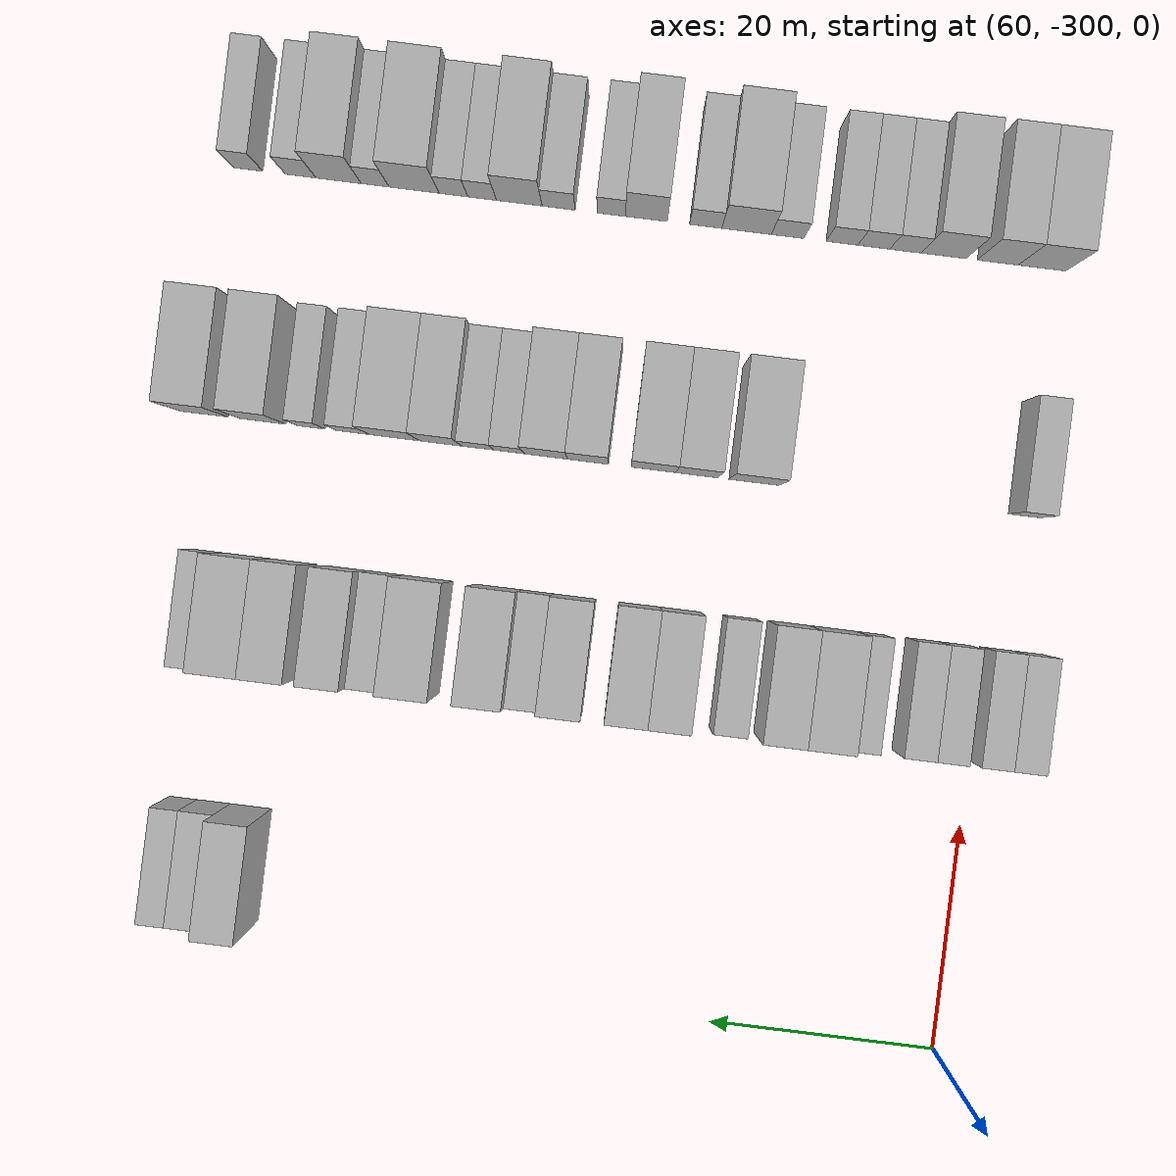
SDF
<sdf version="1.6">
 <world name="default">
  <model name="building_411">
   <static>1</static>
   <pose>69.0000 -237.3445 0 0.000000 0.000000 0.000000</pose>
   <link name="link">
    <pose>0 0 4.50 0 0 0</pose>
    <collision name="collision"><geometry><box><size>10.0000 3.6875 9.0000</size></box></geometry></collision>
    <visual name="visual">
     <cast_shadows>0</cast_shadows>
     <geometry><box><size>10.0000 3.6875 9.0000</size></box></geometry>
     <material>
      <script>
       <uri>model://HANNAS_wall/materials/scripts</uri>
       <uri>model://HANNAS_wall/materials/textures</uri>
       <name>vrc/HANNAS_wall</name>
      </script>
     </material>
    </visual>
   </link>
  </model>
  <model name="building_412">
   <static>1</static>
   <pose>69.0000 -234.0063 0 0.000000 0.000000 0.000000</pose>
   <link name="link">
    <pose>0 0 3.00 0 0 0</pose>
    <collision name="collision"><geometry><box><size>10.0000 2.9889 6.0000</size></box></geometry></collision>
    <visual name="visual">
     <cast_shadows>0</cast_shadows>
     <geometry><box><size>10.0000 2.9889 6.0000</size></box></geometry>
     <material>
      <script>
       <uri>model://HANNAS_wall/materials/scripts</uri>
       <uri>model://HANNAS_wall/materials/textures</uri>
       <name>vrc/HANNAS_wall</name>
      </script>
     </material>
    </visual>
   </link>
  </model>
  <model name="building_413">
   <static>1</static>
   <pose>69.0000 -231.2958 0 0.000000 0.000000 0.000000</pose>
   <link name="link">
    <pose>0 0 3.00 0 0 0</pose>
    <collision name="collision"><geometry><box><size>10.0000 2.4319 6.0000</size></box></geometry></collision>
    <visual name="visual">
     <cast_shadows>0</cast_shadows>
     <geometry><box><size>10.0000 2.4319 6.0000</size></box></geometry>
     <material>
      <script>
       <uri>model://HANNAS_wall/materials/scripts</uri>
       <uri>model://HANNAS_wall/materials/textures</uri>
       <name>vrc/HANNAS_wall</name>
      </script>
     </material>
    </visual>
   </link>
  </model>
  <model name="building_587">
   <static>1</static>
   <pose>91.0000 -303.9237 0 0.000000 0.000000 0.000000</pose>
   <link name="link">
    <pose>0 0 3.00 0 0 0</pose>
    <collision name="collision"><geometry><box><size>10.0000 2.8522 6.0000</size></box></geometry></collision>
    <visual name="visual">
     <cast_shadows>0</cast_shadows>
     <geometry><box><size>10.0000 2.8522 6.0000</size></box></geometry>
     <material>
      <script>
       <uri>model://HANNAS_wall/materials/scripts</uri>
       <uri>model://HANNAS_wall/materials/textures</uri>
       <name>vrc/HANNAS_wall</name>
      </script>
     </material>
    </visual>
   </link>
  </model>
  <model name="building_588">
   <static>1</static>
   <pose>91.0000 -301.1049 0 0.000000 0.000000 0.000000</pose>
   <link name="link">
    <pose>0 0 3.00 0 0 0</pose>
    <collision name="collision"><geometry><box><size>10.0000 2.7854 6.0000</size></box></geometry></collision>
    <visual name="visual">
     <cast_shadows>0</cast_shadows>
     <geometry><box><size>10.0000 2.7854 6.0000</size></box></geometry>
     <material>
      <script>
       <uri>model://HANNAS_wall/materials/scripts</uri>
       <uri>model://HANNAS_wall/materials/textures</uri>
       <name>vrc/HANNAS_wall</name>
      </script>
     </material>
    </visual>
   </link>
  </model>
  <model name="building_589">
   <static>1</static>
   <pose>91.0000 -297.3207 0 0.000000 0.000000 0.000000</pose>
   <link name="link">
    <pose>0 0 3.00 0 0 0</pose>
    <collision name="collision"><geometry><box><size>10.0000 2.7829 6.0000</size></box></geometry></collision>
    <visual name="visual">
     <cast_shadows>0</cast_shadows>
     <geometry><box><size>10.0000 2.7829 6.0000</size></box></geometry>
     <material>
      <script>
       <uri>model://HANNAS_wall/materials/scripts</uri>
       <uri>model://HANNAS_wall/materials/textures</uri>
       <name>vrc/HANNAS_wall</name>
      </script>
     </material>
    </visual>
   </link>
  </model>
  <model name="building_590">
   <static>1</static>
   <pose>91.0000 -294.5070 0 0.000000 0.000000 0.000000</pose>
   <link name="link">
    <pose>0 0 3.00 0 0 0</pose>
    <collision name="collision"><geometry><box><size>10.0000 2.8445 6.0000</size></box></geometry></collision>
    <visual name="visual">
     <cast_shadows>0</cast_shadows>
     <geometry><box><size>10.0000 2.8445 6.0000</size></box></geometry>
     <material>
      <script>
       <uri>model://HANNAS_wall/materials/scripts</uri>
       <uri>model://HANNAS_wall/materials/textures</uri>
       <name>vrc/HANNAS_wall</name>
      </script>
     </material>
    </visual>
   </link>
  </model>
  <model name="building_591">
   <static>1</static>
   <pose>91.0000 -289.8583 0 0.000000 0.000000 0.000000</pose>
   <link name="link">
    <pose>0 0 3.00 0 0 0</pose>
    <collision name="collision"><geometry><box><size>10.0000 2.4528 6.0000</size></box></geometry></collision>
    <visual name="visual">
     <cast_shadows>0</cast_shadows>
     <geometry><box><size>10.0000 2.4528 6.0000</size></box></geometry>
     <material>
      <script>
       <uri>model://HANNAS_wall/materials/scripts</uri>
       <uri>model://HANNAS_wall/materials/textures</uri>
       <name>vrc/HANNAS_wall</name>
      </script>
     </material>
    </visual>
   </link>
  </model>
  <model name="building_592">
   <static>1</static>
   <pose>91.0000 -286.5603 0 0.000000 0.000000 0.000000</pose>
   <link name="link">
    <pose>0 0 4.50 0 0 0</pose>
    <collision name="collision"><geometry><box><size>10.0000 4.1432 9.0000</size></box></geometry></collision>
    <visual name="visual">
     <cast_shadows>0</cast_shadows>
     <geometry><box><size>10.0000 4.1432 9.0000</size></box></geometry>
     <material>
      <script>
       <uri>model://HANNAS_wall/materials/scripts</uri>
       <uri>model://HANNAS_wall/materials/textures</uri>
       <name>vrc/HANNAS_wall</name>
      </script>
     </material>
    </visual>
   </link>
  </model>
  <model name="building_593">
   <static>1</static>
   <pose>91.0000 -282.6143 0 0.000000 0.000000 0.000000</pose>
   <link name="link">
    <pose>0 0 4.50 0 0 0</pose>
    <collision name="collision"><geometry><box><size>10.0000 3.7489 9.0000</size></box></geometry></collision>
    <visual name="visual">
     <cast_shadows>0</cast_shadows>
     <geometry><box><size>10.0000 3.7489 9.0000</size></box></geometry>
     <material>
      <script>
       <uri>model://HANNAS_wall/materials/scripts</uri>
       <uri>model://HANNAS_wall/materials/textures</uri>
       <name>vrc/HANNAS_wall</name>
      </script>
     </material>
    </visual>
   </link>
  </model>
  <model name="building_594">
   <static>1</static>
   <pose>91.0000 -278.2518 0 0.000000 0.000000 0.000000</pose>
   <link name="link">
    <pose>0 0 3.00 0 0 0</pose>
    <collision name="collision"><geometry><box><size>10.0000 2.9760 6.0000</size></box></geometry></collision>
    <visual name="visual">
     <cast_shadows>0</cast_shadows>
     <geometry><box><size>10.0000 2.9760 6.0000</size></box></geometry>
     <material>
      <script>
       <uri>model://HANNAS_wall/materials/scripts</uri>
       <uri>model://HANNAS_wall/materials/textures</uri>
       <name>vrc/HANNAS_wall</name>
      </script>
     </material>
    </visual>
   </link>
  </model>
  <model name="building_595">
   <static>1</static>
   <pose>91.0000 -272.9357 0 0.000000 0.000000 0.000000</pose>
   <link name="link">
    <pose>0 0 4.50 0 0 0</pose>
    <collision name="collision"><geometry><box><size>10.0000 3.6562 9.0000</size></box></geometry></collision>
    <visual name="visual">
     <cast_shadows>0</cast_shadows>
     <geometry><box><size>10.0000 3.6562 9.0000</size></box></geometry>
     <material>
      <script>
       <uri>model://HANNAS_wall/materials/scripts</uri>
       <uri>model://HANNAS_wall/materials/textures</uri>
       <name>vrc/HANNAS_wall</name>
      </script>
     </material>
    </visual>
   </link>
  </model>
  <model name="building_596">
   <static>1</static>
   <pose>91.0000 -269.2772 0 0.000000 0.000000 0.000000</pose>
   <link name="link">
    <pose>0 0 4.50 0 0 0</pose>
    <collision name="collision"><geometry><box><size>10.0000 3.6609 9.0000</size></box></geometry></collision>
    <visual name="visual">
     <cast_shadows>0</cast_shadows>
     <geometry><box><size>10.0000 3.6609 9.0000</size></box></geometry>
     <material>
      <script>
       <uri>model://HANNAS_wall/materials/scripts</uri>
       <uri>model://HANNAS_wall/materials/textures</uri>
       <name>vrc/HANNAS_wall</name>
      </script>
     </material>
    </visual>
   </link>
  </model>
  <model name="building_597">
   <static>1</static>
   <pose>91.0000 -263.5575 0 0.000000 0.000000 0.000000</pose>
   <link name="link">
    <pose>0 0 4.50 0 0 0</pose>
    <collision name="collision"><geometry><box><size>10.0000 3.7784 9.0000</size></box></geometry></collision>
    <visual name="visual">
     <cast_shadows>0</cast_shadows>
     <geometry><box><size>10.0000 3.7784 9.0000</size></box></geometry>
     <material>
      <script>
       <uri>model://HANNAS_wall/materials/scripts</uri>
       <uri>model://HANNAS_wall/materials/textures</uri>
       <name>vrc/HANNAS_wall</name>
      </script>
     </material>
    </visual>
   </link>
  </model>
  <model name="building_598">
   <static>1</static>
   <pose>91.0000 -260.2403 0 0.000000 0.000000 0.000000</pose>
   <link name="link">
    <pose>0 0 3.00 0 0 0</pose>
    <collision name="collision"><geometry><box><size>10.0000 2.8560 6.0000</size></box></geometry></collision>
    <visual name="visual">
     <cast_shadows>0</cast_shadows>
     <geometry><box><size>10.0000 2.8560 6.0000</size></box></geometry>
     <material>
      <script>
       <uri>model://HANNAS_wall/materials/scripts</uri>
       <uri>model://HANNAS_wall/materials/textures</uri>
       <name>vrc/HANNAS_wall</name>
      </script>
     </material>
    </visual>
   </link>
  </model>
  <model name="building_599">
   <static>1</static>
   <pose>91.0000 -256.7342 0 0.000000 0.000000 0.000000</pose>
   <link name="link">
    <pose>0 0 4.50 0 0 0</pose>
    <collision name="collision"><geometry><box><size>10.0000 4.1562 9.0000</size></box></geometry></collision>
    <visual name="visual">
     <cast_shadows>0</cast_shadows>
     <geometry><box><size>10.0000 4.1562 9.0000</size></box></geometry>
     <material>
      <script>
       <uri>model://HANNAS_wall/materials/scripts</uri>
       <uri>model://HANNAS_wall/materials/textures</uri>
       <name>vrc/HANNAS_wall</name>
      </script>
     </material>
    </visual>
   </link>
  </model>
  <model name="building_600">
   <static>1</static>
   <pose>91.0000 -250.4208 0 0.000000 0.000000 0.000000</pose>
   <link name="link">
    <pose>0 0 4.50 0 0 0</pose>
    <collision name="collision"><geometry><box><size>10.0000 4.4707 9.0000</size></box></geometry></collision>
    <visual name="visual">
     <cast_shadows>0</cast_shadows>
     <geometry><box><size>10.0000 4.4707 9.0000</size></box></geometry>
     <material>
      <script>
       <uri>model://HANNAS_wall/materials/scripts</uri>
       <uri>model://HANNAS_wall/materials/textures</uri>
       <name>vrc/HANNAS_wall</name>
      </script>
     </material>
    </visual>
   </link>
  </model>
  <model name="building_601">
   <static>1</static>
   <pose>91.0000 -246.7188 0 0.000000 0.000000 0.000000</pose>
   <link name="link">
    <pose>0 0 3.00 0 0 0</pose>
    <collision name="collision"><geometry><box><size>10.0000 2.9333 6.0000</size></box></geometry></collision>
    <visual name="visual">
     <cast_shadows>0</cast_shadows>
     <geometry><box><size>10.0000 2.9333 6.0000</size></box></geometry>
     <material>
      <script>
       <uri>model://HANNAS_wall/materials/scripts</uri>
       <uri>model://HANNAS_wall/materials/textures</uri>
       <name>vrc/HANNAS_wall</name>
      </script>
     </material>
    </visual>
   </link>
  </model>
  <model name="building_602">
   <static>1</static>
   <pose>91.0000 -243.3956 0 0.000000 0.000000 0.000000</pose>
   <link name="link">
    <pose>0 0 4.50 0 0 0</pose>
    <collision name="collision"><geometry><box><size>10.0000 3.7132 9.0000</size></box></geometry></collision>
    <visual name="visual">
     <cast_shadows>0</cast_shadows>
     <geometry><box><size>10.0000 3.7132 9.0000</size></box></geometry>
     <material>
      <script>
       <uri>model://HANNAS_wall/materials/scripts</uri>
       <uri>model://HANNAS_wall/materials/textures</uri>
       <name>vrc/HANNAS_wall</name>
      </script>
     </material>
    </visual>
   </link>
  </model>
  <model name="building_603">
   <static>1</static>
   <pose>91.0000 -238.6122 0 0.000000 0.000000 0.000000</pose>
   <link name="link">
    <pose>0 0 4.50 0 0 0</pose>
    <collision name="collision"><geometry><box><size>10.0000 3.8535 9.0000</size></box></geometry></collision>
    <visual name="visual">
     <cast_shadows>0</cast_shadows>
     <geometry><box><size>10.0000 3.8535 9.0000</size></box></geometry>
     <material>
      <script>
       <uri>model://HANNAS_wall/materials/scripts</uri>
       <uri>model://HANNAS_wall/materials/textures</uri>
       <name>vrc/HANNAS_wall</name>
      </script>
     </material>
    </visual>
   </link>
  </model>
  <model name="building_604">
   <static>1</static>
   <pose>91.0000 -234.5033 0 0.000000 0.000000 0.000000</pose>
   <link name="link">
    <pose>0 0 4.50 0 0 0</pose>
    <collision name="collision"><geometry><box><size>10.0000 4.3644 9.0000</size></box></geometry></collision>
    <visual name="visual">
     <cast_shadows>0</cast_shadows>
     <geometry><box><size>10.0000 4.3644 9.0000</size></box></geometry>
     <material>
      <script>
       <uri>model://HANNAS_wall/materials/scripts</uri>
       <uri>model://HANNAS_wall/materials/textures</uri>
       <name>vrc/HANNAS_wall</name>
      </script>
     </material>
    </visual>
   </link>
  </model>
  <model name="building_605">
   <static>1</static>
   <pose>91.0000 -231.0817 0 0.000000 0.000000 0.000000</pose>
   <link name="link">
    <pose>0 0 3.00 0 0 0</pose>
    <collision name="collision"><geometry><box><size>10.0000 2.4788 6.0000</size></box></geometry></collision>
    <visual name="visual">
     <cast_shadows>0</cast_shadows>
     <geometry><box><size>10.0000 2.4788 6.0000</size></box></geometry>
     <material>
      <script>
       <uri>model://HANNAS_wall/materials/scripts</uri>
       <uri>model://HANNAS_wall/materials/textures</uri>
       <name>vrc/HANNAS_wall</name>
      </script>
     </material>
    </visual>
   </link>
  </model>
  <model name="building_775">
   <static>1</static>
   <pose>113.0000 -302.1675 0 0.000000 0.000000 0.000000</pose>
   <link name="link">
    <pose>0 0 3.00 0 0 0</pose>
    <collision name="collision"><geometry><box><size>10.0000 2.8094 6.0000</size></box></geometry></collision>
    <visual name="visual">
     <cast_shadows>0</cast_shadows>
     <geometry><box><size>10.0000 2.8094 6.0000</size></box></geometry>
     <material>
      <script>
       <uri>model://HANNAS_wall/materials/scripts</uri>
       <uri>model://HANNAS_wall/materials/textures</uri>
       <name>vrc/HANNAS_wall</name>
      </script>
     </material>
    </visual>
   </link>
  </model>
  <model name="building_776">
   <static>1</static>
   <pose>113.0000 -278.0459 0 0.000000 0.000000 0.000000</pose>
   <link name="link">
    <pose>0 0 4.50 0 0 0</pose>
    <collision name="collision"><geometry><box><size>10.0000 4.4779 9.0000</size></box></geometry></collision>
    <visual name="visual">
     <cast_shadows>0</cast_shadows>
     <geometry><box><size>10.0000 4.4779 9.0000</size></box></geometry>
     <material>
      <script>
       <uri>model://HANNAS_wall/materials/scripts</uri>
       <uri>model://HANNAS_wall/materials/textures</uri>
       <name>vrc/HANNAS_wall</name>
      </script>
     </material>
    </visual>
   </link>
  </model>
  <model name="building_777">
   <static>1</static>
   <pose>113.0000 -272.9342 0 0.000000 0.000000 0.000000</pose>
   <link name="link">
    <pose>0 0 4.50 0 0 0</pose>
    <collision name="collision"><geometry><box><size>10.0000 3.7455 9.0000</size></box></geometry></collision>
    <visual name="visual">
     <cast_shadows>0</cast_shadows>
     <geometry><box><size>10.0000 3.7455 9.0000</size></box></geometry>
     <material>
      <script>
       <uri>model://HANNAS_wall/materials/scripts</uri>
       <uri>model://HANNAS_wall/materials/textures</uri>
       <name>vrc/HANNAS_wall</name>
      </script>
     </material>
    </visual>
   </link>
  </model>
  <model name="building_778">
   <static>1</static>
   <pose>113.0000 -269.0597 0 0.000000 0.000000 0.000000</pose>
   <link name="link">
    <pose>0 0 4.50 0 0 0</pose>
    <collision name="collision"><geometry><box><size>10.0000 4.0034 9.0000</size></box></geometry></collision>
    <visual name="visual">
     <cast_shadows>0</cast_shadows>
     <geometry><box><size>10.0000 4.0034 9.0000</size></box></geometry>
     <material>
      <script>
       <uri>model://HANNAS_wall/materials/scripts</uri>
       <uri>model://HANNAS_wall/materials/textures</uri>
       <name>vrc/HANNAS_wall</name>
      </script>
     </material>
    </visual>
   </link>
  </model>
  <model name="building_779">
   <static>1</static>
   <pose>113.0000 -263.2441 0 0.000000 0.000000 0.000000</pose>
   <link name="link">
    <pose>0 0 4.50 0 0 0</pose>
    <collision name="collision"><geometry><box><size>10.0000 3.6278 9.0000</size></box></geometry></collision>
    <visual name="visual">
     <cast_shadows>0</cast_shadows>
     <geometry><box><size>10.0000 3.6278 9.0000</size></box></geometry>
     <material>
      <script>
       <uri>model://HANNAS_wall/materials/scripts</uri>
       <uri>model://HANNAS_wall/materials/textures</uri>
       <name>vrc/HANNAS_wall</name>
      </script>
     </material>
    </visual>
   </link>
  </model>
  <model name="building_780">
   <static>1</static>
   <pose>113.0000 -259.5020 0 0.000000 0.000000 0.000000</pose>
   <link name="link">
    <pose>0 0 4.50 0 0 0</pose>
    <collision name="collision"><geometry><box><size>10.0000 3.8564 9.0000</size></box></geometry></collision>
    <visual name="visual">
     <cast_shadows>0</cast_shadows>
     <geometry><box><size>10.0000 3.8564 9.0000</size></box></geometry>
     <material>
      <script>
       <uri>model://HANNAS_wall/materials/scripts</uri>
       <uri>model://HANNAS_wall/materials/textures</uri>
       <name>vrc/HANNAS_wall</name>
      </script>
     </material>
    </visual>
   </link>
  </model>
  <model name="building_781">
   <static>1</static>
   <pose>113.0000 -256.1829 0 0.000000 0.000000 0.000000</pose>
   <link name="link">
    <pose>0 0 3.00 0 0 0</pose>
    <collision name="collision"><geometry><box><size>10.0000 2.7818 6.0000</size></box></geometry></collision>
    <visual name="visual">
     <cast_shadows>0</cast_shadows>
     <geometry><box><size>10.0000 2.7818 6.0000</size></box></geometry>
     <material>
      <script>
       <uri>model://HANNAS_wall/materials/scripts</uri>
       <uri>model://HANNAS_wall/materials/textures</uri>
       <name>vrc/HANNAS_wall</name>
      </script>
     </material>
    </visual>
   </link>
  </model>
  <model name="building_782">
   <static>1</static>
   <pose>113.0000 -253.3763 0 0.000000 0.000000 0.000000</pose>
   <link name="link">
    <pose>0 0 3.00 0 0 0</pose>
    <collision name="collision"><geometry><box><size>10.0000 2.8314 6.0000</size></box></geometry></collision>
    <visual name="visual">
     <cast_shadows>0</cast_shadows>
     <geometry><box><size>10.0000 2.8314 6.0000</size></box></geometry>
     <material>
      <script>
       <uri>model://HANNAS_wall/materials/scripts</uri>
       <uri>model://HANNAS_wall/materials/textures</uri>
       <name>vrc/HANNAS_wall</name>
      </script>
     </material>
    </visual>
   </link>
  </model>
  <model name="building_783">
   <static>1</static>
   <pose>113.0000 -250.0902 0 0.000000 0.000000 0.000000</pose>
   <link name="link">
    <pose>0 0 4.50 0 0 0</pose>
    <collision name="collision"><geometry><box><size>10.0000 3.7407 9.0000</size></box></geometry></collision>
    <visual name="visual">
     <cast_shadows>0</cast_shadows>
     <geometry><box><size>10.0000 3.7407 9.0000</size></box></geometry>
     <material>
      <script>
       <uri>model://HANNAS_wall/materials/scripts</uri>
       <uri>model://HANNAS_wall/materials/textures</uri>
       <name>vrc/HANNAS_wall</name>
      </script>
     </material>
    </visual>
   </link>
  </model>
  <model name="building_784">
   <static>1</static>
   <pose>113.0000 -245.9719 0 0.000000 0.000000 0.000000</pose>
   <link name="link">
    <pose>0 0 4.50 0 0 0</pose>
    <collision name="collision"><geometry><box><size>10.0000 4.4958 9.0000</size></box></geometry></collision>
    <visual name="visual">
     <cast_shadows>0</cast_shadows>
     <geometry><box><size>10.0000 4.4958 9.0000</size></box></geometry>
     <material>
      <script>
       <uri>model://HANNAS_wall/materials/scripts</uri>
       <uri>model://HANNAS_wall/materials/textures</uri>
       <name>vrc/HANNAS_wall</name>
      </script>
     </material>
    </visual>
   </link>
  </model>
  <model name="building_785">
   <static>1</static>
   <pose>113.0000 -242.2442 0 0.000000 0.000000 0.000000</pose>
   <link name="link">
    <pose>0 0 3.00 0 0 0</pose>
    <collision name="collision"><geometry><box><size>10.0000 2.9597 6.0000</size></box></geometry></collision>
    <visual name="visual">
     <cast_shadows>0</cast_shadows>
     <geometry><box><size>10.0000 2.9597 6.0000</size></box></geometry>
     <material>
      <script>
       <uri>model://HANNAS_wall/materials/scripts</uri>
       <uri>model://HANNAS_wall/materials/textures</uri>
       <name>vrc/HANNAS_wall</name>
      </script>
     </material>
    </visual>
   </link>
  </model>
  <model name="building_786">
   <static>1</static>
   <pose>113.0000 -238.5118 0 0.000000 0.000000 0.000000</pose>
   <link name="link">
    <pose>0 0 3.00 0 0 0</pose>
    <collision name="collision"><geometry><box><size>10.0000 2.5050 6.0000</size></box></geometry></collision>
    <visual name="visual">
     <cast_shadows>0</cast_shadows>
     <geometry><box><size>10.0000 2.5050 6.0000</size></box></geometry>
     <material>
      <script>
       <uri>model://HANNAS_wall/materials/scripts</uri>
       <uri>model://HANNAS_wall/materials/textures</uri>
       <name>vrc/HANNAS_wall</name>
      </script>
     </material>
    </visual>
   </link>
  </model>
  <model name="building_787">
   <static>1</static>
   <pose>113.0000 -234.2046 0 0.000000 0.000000 0.000000</pose>
   <link name="link">
    <pose>0 0 4.50 0 0 0</pose>
    <collision name="collision"><geometry><box><size>10.0000 4.1094 9.0000</size></box></geometry></collision>
    <visual name="visual">
     <cast_shadows>0</cast_shadows>
     <geometry><box><size>10.0000 4.1094 9.0000</size></box></geometry>
     <material>
      <script>
       <uri>model://HANNAS_wall/materials/scripts</uri>
       <uri>model://HANNAS_wall/materials/textures</uri>
       <name>vrc/HANNAS_wall</name>
      </script>
     </material>
    </visual>
   </link>
  </model>
  <model name="building_788">
   <static>1</static>
   <pose>113.0000 -228.9640 0 0.000000 0.000000 0.000000</pose>
   <link name="link">
    <pose>0 0 4.50 0 0 0</pose>
    <collision name="collision"><geometry><box><size>10.0000 4.3718 9.0000</size></box></geometry></collision>
    <visual name="visual">
     <cast_shadows>0</cast_shadows>
     <geometry><box><size>10.0000 4.3718 9.0000</size></box></geometry>
     <material>
      <script>
       <uri>model://HANNAS_wall/materials/scripts</uri>
       <uri>model://HANNAS_wall/materials/textures</uri>
       <name>vrc/HANNAS_wall</name>
      </script>
     </material>
    </visual>
   </link>
  </model>
  <model name="building_946">
   <static>1</static>
   <pose>135.0000 -301.0588 0 0.000000 0.000000 0.000000</pose>
   <link name="link">
    <pose>0 0 4.50 0 0 0</pose>
    <collision name="collision"><geometry><box><size>10.0000 4.2567 9.0000</size></box></geometry></collision>
    <visual name="visual">
     <cast_shadows>0</cast_shadows>
     <geometry><box><size>10.0000 4.2567 9.0000</size></box></geometry>
     <material>
      <script>
       <uri>model://HANNAS_wall/materials/scripts</uri>
       <uri>model://HANNAS_wall/materials/textures</uri>
       <name>vrc/HANNAS_wall</name>
      </script>
     </material>
    </visual>
   </link>
  </model>
  <model name="building_947">
   <static>1</static>
   <pose>135.0000 -297.1032 0 0.000000 0.000000 0.000000</pose>
   <link name="link">
    <pose>0 0 4.50 0 0 0</pose>
    <collision name="collision"><geometry><box><size>10.0000 3.6545 9.0000</size></box></geometry></collision>
    <visual name="visual">
     <cast_shadows>0</cast_shadows>
     <geometry><box><size>10.0000 3.6545 9.0000</size></box></geometry>
     <material>
      <script>
       <uri>model://HANNAS_wall/materials/scripts</uri>
       <uri>model://HANNAS_wall/materials/textures</uri>
       <name>vrc/HANNAS_wall</name>
      </script>
     </material>
    </visual>
   </link>
  </model>
  <model name="building_948">
   <static>1</static>
   <pose>135.0000 -292.2593 0 0.000000 0.000000 0.000000</pose>
   <link name="link">
    <pose>0 0 4.50 0 0 0</pose>
    <collision name="collision"><geometry><box><size>10.0000 4.0332 9.0000</size></box></geometry></collision>
    <visual name="visual">
     <cast_shadows>0</cast_shadows>
     <geometry><box><size>10.0000 4.0332 9.0000</size></box></geometry>
     <material>
      <script>
       <uri>model://HANNAS_wall/materials/scripts</uri>
       <uri>model://HANNAS_wall/materials/textures</uri>
       <name>vrc/HANNAS_wall</name>
      </script>
     </material>
    </visual>
   </link>
  </model>
  <model name="building_949">
   <static>1</static>
   <pose>135.0000 -288.8517 0 0.000000 0.000000 0.000000</pose>
   <link name="link">
    <pose>0 0 3.00 0 0 0</pose>
    <collision name="collision"><geometry><box><size>10.0000 2.7821 6.0000</size></box></geometry></collision>
    <visual name="visual">
     <cast_shadows>0</cast_shadows>
     <geometry><box><size>10.0000 2.7821 6.0000</size></box></geometry>
     <material>
      <script>
       <uri>model://HANNAS_wall/materials/scripts</uri>
       <uri>model://HANNAS_wall/materials/textures</uri>
       <name>vrc/HANNAS_wall</name>
      </script>
     </material>
    </visual>
   </link>
  </model>
  <model name="building_950">
   <static>1</static>
   <pose>135.0000 -286.0278 0 0.000000 0.000000 0.000000</pose>
   <link name="link">
    <pose>0 0 3.00 0 0 0</pose>
    <collision name="collision"><geometry><box><size>10.0000 2.8657 6.0000</size></box></geometry></collision>
    <visual name="visual">
     <cast_shadows>0</cast_shadows>
     <geometry><box><size>10.0000 2.8657 6.0000</size></box></geometry>
     <material>
      <script>
       <uri>model://HANNAS_wall/materials/scripts</uri>
       <uri>model://HANNAS_wall/materials/textures</uri>
       <name>vrc/HANNAS_wall</name>
      </script>
     </material>
    </visual>
   </link>
  </model>
  <model name="building_951">
   <static>1</static>
   <pose>135.0000 -283.1778 0 0.000000 0.000000 0.000000</pose>
   <link name="link">
    <pose>0 0 3.00 0 0 0</pose>
    <collision name="collision"><geometry><box><size>10.0000 2.8344 6.0000</size></box></geometry></collision>
    <visual name="visual">
     <cast_shadows>0</cast_shadows>
     <geometry><box><size>10.0000 2.8344 6.0000</size></box></geometry>
     <material>
      <script>
       <uri>model://HANNAS_wall/materials/scripts</uri>
       <uri>model://HANNAS_wall/materials/textures</uri>
       <name>vrc/HANNAS_wall</name>
      </script>
     </material>
    </visual>
   </link>
  </model>
  <model name="building_952">
   <static>1</static>
   <pose>135.0000 -278.3077 0 0.000000 0.000000 0.000000</pose>
   <link name="link">
    <pose>0 0 3.00 0 0 0</pose>
    <collision name="collision"><geometry><box><size>10.0000 2.9057 6.0000</size></box></geometry></collision>
    <visual name="visual">
     <cast_shadows>0</cast_shadows>
     <geometry><box><size>10.0000 2.9057 6.0000</size></box></geometry>
     <material>
      <script>
       <uri>model://HANNAS_wall/materials/scripts</uri>
       <uri>model://HANNAS_wall/materials/textures</uri>
       <name>vrc/HANNAS_wall</name>
      </script>
     </material>
    </visual>
   </link>
  </model>
  <model name="building_953">
   <static>1</static>
   <pose>135.0000 -274.6401 0 0.000000 0.000000 0.000000</pose>
   <link name="link">
    <pose>0 0 4.50 0 0 0</pose>
    <collision name="collision"><geometry><box><size>10.0000 4.4295 9.0000</size></box></geometry></collision>
    <visual name="visual">
     <cast_shadows>0</cast_shadows>
     <geometry><box><size>10.0000 4.4295 9.0000</size></box></geometry>
     <material>
      <script>
       <uri>model://HANNAS_wall/materials/scripts</uri>
       <uri>model://HANNAS_wall/materials/textures</uri>
       <name>vrc/HANNAS_wall</name>
      </script>
     </material>
    </visual>
   </link>
  </model>
  <model name="building_954">
   <static>1</static>
   <pose>135.0000 -270.9912 0 0.000000 0.000000 0.000000</pose>
   <link name="link">
    <pose>0 0 3.00 0 0 0</pose>
    <collision name="collision"><geometry><box><size>10.0000 2.8684 6.0000</size></box></geometry></collision>
    <visual name="visual">
     <cast_shadows>0</cast_shadows>
     <geometry><box><size>10.0000 2.8684 6.0000</size></box></geometry>
     <material>
      <script>
       <uri>model://HANNAS_wall/materials/scripts</uri>
       <uri>model://HANNAS_wall/materials/textures</uri>
       <name>vrc/HANNAS_wall</name>
      </script>
     </material>
    </visual>
   </link>
  </model>
  <model name="building_955">
   <static>1</static>
   <pose>135.0000 -265.7111 0 0.000000 0.000000 0.000000</pose>
   <link name="link">
    <pose>0 0 4.50 0 0 0</pose>
    <collision name="collision"><geometry><box><size>10.0000 3.6920 9.0000</size></box></geometry></collision>
    <visual name="visual">
     <cast_shadows>0</cast_shadows>
     <geometry><box><size>10.0000 3.6920 9.0000</size></box></geometry>
     <material>
      <script>
       <uri>model://HANNAS_wall/materials/scripts</uri>
       <uri>model://HANNAS_wall/materials/textures</uri>
       <name>vrc/HANNAS_wall</name>
      </script>
     </material>
    </visual>
   </link>
  </model>
  <model name="building_956">
   <static>1</static>
   <pose>135.0000 -262.6025 0 0.000000 0.000000 0.000000</pose>
   <link name="link">
    <pose>0 0 3.00 0 0 0</pose>
    <collision name="collision"><geometry><box><size>10.0000 2.5251 6.0000</size></box></geometry></collision>
    <visual name="visual">
     <cast_shadows>0</cast_shadows>
     <geometry><box><size>10.0000 2.5251 6.0000</size></box></geometry>
     <material>
      <script>
       <uri>model://HANNAS_wall/materials/scripts</uri>
       <uri>model://HANNAS_wall/materials/textures</uri>
       <name>vrc/HANNAS_wall</name>
      </script>
     </material>
    </visual>
   </link>
  </model>
  <model name="building_957">
   <static>1</static>
   <pose>135.0000 -257.8628 0 0.000000 0.000000 0.000000</pose>
   <link name="link">
    <pose>0 0 3.00 0 0 0</pose>
    <collision name="collision"><geometry><box><size>10.0000 2.9542 6.0000</size></box></geometry></collision>
    <visual name="visual">
     <cast_shadows>0</cast_shadows>
     <geometry><box><size>10.0000 2.9542 6.0000</size></box></geometry>
     <material>
      <script>
       <uri>model://HANNAS_wall/materials/scripts</uri>
       <uri>model://HANNAS_wall/materials/textures</uri>
       <name>vrc/HANNAS_wall</name>
      </script>
     </material>
    </visual>
   </link>
  </model>
  <model name="building_958">
   <static>1</static>
   <pose>135.0000 -254.3430 0 0.000000 0.000000 0.000000</pose>
   <link name="link">
    <pose>0 0 4.50 0 0 0</pose>
    <collision name="collision"><geometry><box><size>10.0000 4.0855 9.0000</size></box></geometry></collision>
    <visual name="visual">
     <cast_shadows>0</cast_shadows>
     <geometry><box><size>10.0000 4.0855 9.0000</size></box></geometry>
     <material>
      <script>
       <uri>model://HANNAS_wall/materials/scripts</uri>
       <uri>model://HANNAS_wall/materials/textures</uri>
       <name>vrc/HANNAS_wall</name>
      </script>
     </material>
    </visual>
   </link>
  </model>
  <model name="building_959">
   <static>1</static>
   <pose>135.0000 -251.0271 0 0.000000 0.000000 0.000000</pose>
   <link name="link">
    <pose>0 0 3.00 0 0 0</pose>
    <collision name="collision"><geometry><box><size>10.0000 2.5463 6.0000</size></box></geometry></collision>
    <visual name="visual">
     <cast_shadows>0</cast_shadows>
     <geometry><box><size>10.0000 2.5463 6.0000</size></box></geometry>
     <material>
      <script>
       <uri>model://HANNAS_wall/materials/scripts</uri>
       <uri>model://HANNAS_wall/materials/textures</uri>
       <name>vrc/HANNAS_wall</name>
      </script>
     </material>
    </visual>
   </link>
  </model>
  <model name="building_960">
   <static>1</static>
   <pose>135.0000 -248.4678 0 0.000000 0.000000 0.000000</pose>
   <link name="link">
    <pose>0 0 3.00 0 0 0</pose>
    <collision name="collision"><geometry><box><size>10.0000 2.5723 6.0000</size></box></geometry></collision>
    <visual name="visual">
     <cast_shadows>0</cast_shadows>
     <geometry><box><size>10.0000 2.5723 6.0000</size></box></geometry>
     <material>
      <script>
       <uri>model://HANNAS_wall/materials/scripts</uri>
       <uri>model://HANNAS_wall/materials/textures</uri>
       <name>vrc/HANNAS_wall</name>
      </script>
     </material>
    </visual>
   </link>
  </model>
  <model name="building_961">
   <static>1</static>
   <pose>135.0000 -244.9494 0 0.000000 0.000000 0.000000</pose>
   <link name="link">
    <pose>0 0 4.50 0 0 0</pose>
    <collision name="collision"><geometry><box><size>10.0000 4.4645 9.0000</size></box></geometry></collision>
    <visual name="visual">
     <cast_shadows>0</cast_shadows>
     <geometry><box><size>10.0000 4.4645 9.0000</size></box></geometry>
     <material>
      <script>
       <uri>model://HANNAS_wall/materials/scripts</uri>
       <uri>model://HANNAS_wall/materials/textures</uri>
       <name>vrc/HANNAS_wall</name>
      </script>
     </material>
    </visual>
   </link>
  </model>
  <model name="building_962">
   <static>1</static>
   <pose>135.0000 -241.4802 0 0.000000 0.000000 0.000000</pose>
   <link name="link">
    <pose>0 0 3.00 0 0 0</pose>
    <collision name="collision"><geometry><box><size>10.0000 2.4738 6.0000</size></box></geometry></collision>
    <visual name="visual">
     <cast_shadows>0</cast_shadows>
     <geometry><box><size>10.0000 2.4738 6.0000</size></box></geometry>
     <material>
      <script>
       <uri>model://HANNAS_wall/materials/scripts</uri>
       <uri>model://HANNAS_wall/materials/textures</uri>
       <name>vrc/HANNAS_wall</name>
      </script>
     </material>
    </visual>
   </link>
  </model>
  <model name="building_963">
   <static>1</static>
   <pose>135.0000 -238.2298 0 0.000000 0.000000 0.000000</pose>
   <link name="link">
    <pose>0 0 4.50 0 0 0</pose>
    <collision name="collision"><geometry><box><size>10.0000 4.0271 9.0000</size></box></geometry></collision>
    <visual name="visual">
     <cast_shadows>0</cast_shadows>
     <geometry><box><size>10.0000 4.0271 9.0000</size></box></geometry>
     <material>
      <script>
       <uri>model://HANNAS_wall/materials/scripts</uri>
       <uri>model://HANNAS_wall/materials/textures</uri>
       <name>vrc/HANNAS_wall</name>
      </script>
     </material>
    </visual>
   </link>
  </model>
  <model name="building_964">
   <static>1</static>
   <pose>135.0000 -234.8331 0 0.000000 0.000000 0.000000</pose>
   <link name="link">
    <pose>0 0 3.00 0 0 0</pose>
    <collision name="collision"><geometry><box><size>10.0000 2.7663 6.0000</size></box></geometry></collision>
    <visual name="visual">
     <cast_shadows>0</cast_shadows>
     <geometry><box><size>10.0000 2.7663 6.0000</size></box></geometry>
     <material>
      <script>
       <uri>model://HANNAS_wall/materials/scripts</uri>
       <uri>model://HANNAS_wall/materials/textures</uri>
       <name>vrc/HANNAS_wall</name>
      </script>
     </material>
    </visual>
   </link>
  </model>
  <model name="building_965">
   <static>1</static>
   <pose>135.0000 -230.1454 0 0.000000 0.000000 0.000000</pose>
   <link name="link">
    <pose>0 0 3.00 0 0 0</pose>
    <collision name="collision"><geometry><box><size>10.0000 2.6090 6.0000</size></box></geometry></collision>
    <visual name="visual">
     <cast_shadows>0</cast_shadows>
     <geometry><box><size>10.0000 2.6090 6.0000</size></box></geometry>
     <material>
      <script>
       <uri>model://HANNAS_wall/materials/scripts</uri>
       <uri>model://HANNAS_wall/materials/textures</uri>
       <name>vrc/HANNAS_wall</name>
      </script>
     </material>
    </visual>
   </link>
  </model>
 </world>
</sdf>
